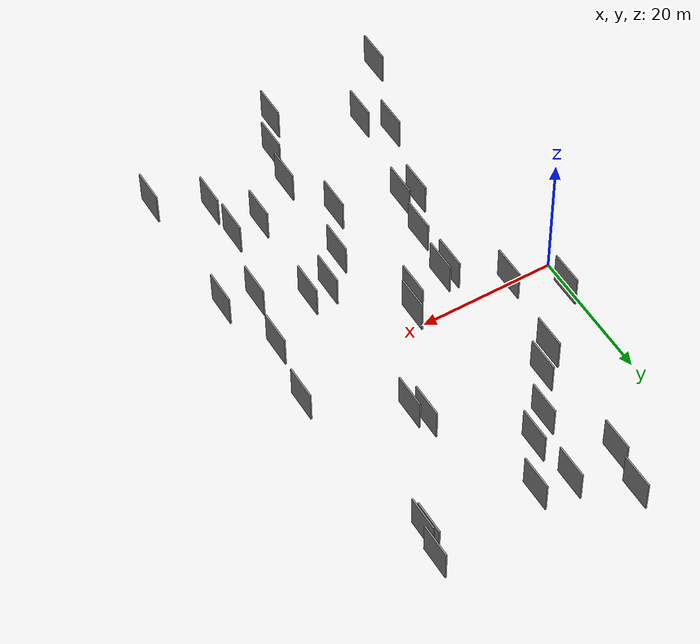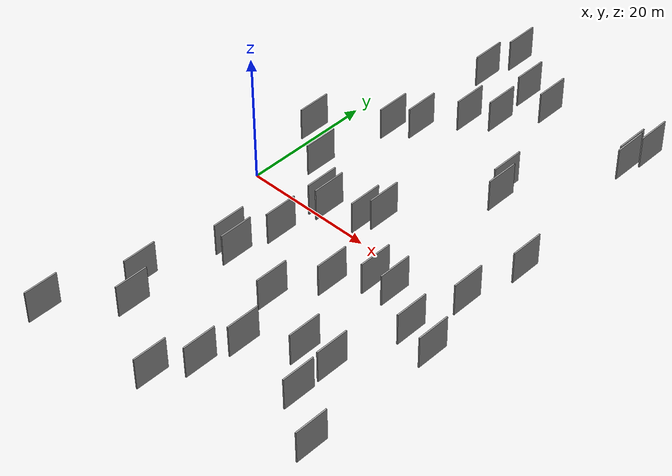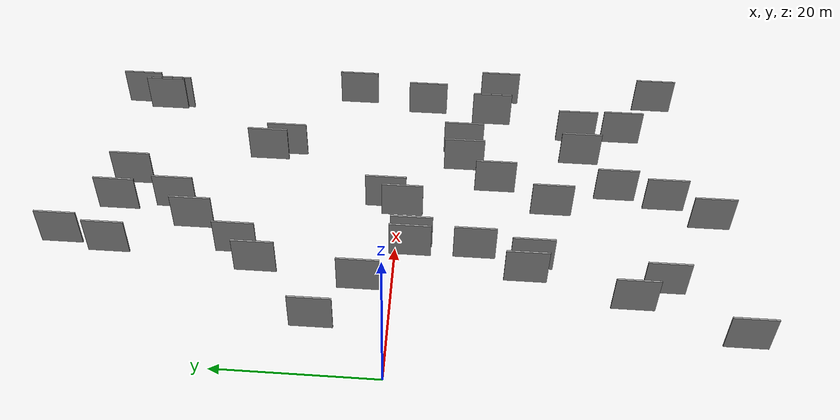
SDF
<sdf version="1.6">
 <world name="default">
  <scene>
   <sky><clouds><speed>12</speed></clouds></sky>
   <ambient>0.4 0.4 0.4 1</ambient>
   <background>0.7 0.7 0.7 1</background>
   <shadows>1</shadows>
  </scene>
  <gravity>0 0 -9.8066</gravity>
  <magnetic_field>6e-06 2.3e-05 -4.2e-05</magnetic_field>
  <physics default="0" name="default_physics" type="ode">
   <ode>
    <solver>
     <type>quick</type>
     <iters>10</iters>
     <sor>1.0</sor>
     <use_dynamic_moi_rescaling>0</use_dynamic_moi_rescaling>
    </solver>
    <constraints>
     <cfm>0</cfm>
     <erp>0.2</erp>
     <contact_max_correcting_vel>100</contact_max_correcting_vel>
     <contact_surface_layer>0.001</contact_surface_layer>
    </constraints>
   </ode>
   <max_step_size>0.004</max_step_size>
   <real_time_factor>1</real_time_factor>
   <real_time_update_rate>250</real_time_update_rate>
  </physics>
  <light name="sun" type="directional">
   <pose>0 0 10 0 0 0</pose>
   <diffuse>0.8 0.8 0.8 1</diffuse>
   <specular>0.2 0.2 0.2 1</specular>
   <attenuation>
    <range>1000</range>
    <constant>0.9</constant>
    <linear>0.01</linear>
    <quadratic>0.001</quadratic>
   </attenuation>
   <direction>-0.5 0.1 -0.9</direction>
  </light>
  <model name="grey_wall_1">
   <static>1</static>
   <pose>39.2944 32.1262 5.0 0.000000 0.000000 1.570796</pose>
   <link name="link">
    <pose>0 0 2.50 0 0 0</pose>
    <collision name="collision"><geometry><box><size>5.00 0.2 5.00</size></box></geometry></collision>
    <visual name="visual">
     <cast_shadows>0</cast_shadows>
     <geometry><box><size>5.00 0.2 5.00</size></box></geometry>
     <material>
      <script>
       <uri>model://grey_wall/materials/scripts</uri>
       <uri>model://grey_wall/materials/textures</uri>
       <name>vrc/grey_wall</name>
      </script>
     </material>
    </visual>
   </link>
  </model>
  <model name="grey_wall_2">
   <static>1</static>
   <pose>36.5267 -22.5072 5.0 0.000000 0.000000 1.570796</pose>
   <link name="link">
    <pose>0 0 2.50 0 0 0</pose>
    <collision name="collision"><geometry><box><size>5.00 0.2 5.00</size></box></geometry></collision>
    <visual name="visual">
     <cast_shadows>0</cast_shadows>
     <geometry><box><size>5.00 0.2 5.00</size></box></geometry>
     <material>
      <script>
       <uri>model://grey_wall/materials/scripts</uri>
       <uri>model://grey_wall/materials/textures</uri>
       <name>vrc/grey_wall</name>
      </script>
     </material>
    </visual>
   </link>
  </model>
  <model name="grey_wall_3">
   <static>1</static>
   <pose>30.2376 17.0134 5.0 0.000000 0.000000 1.570796</pose>
   <link name="link">
    <pose>0 0 2.50 0 0 0</pose>
    <collision name="collision"><geometry><box><size>5.00 0.2 5.00</size></box></geometry></collision>
    <visual name="visual">
     <cast_shadows>0</cast_shadows>
     <geometry><box><size>5.00 0.2 5.00</size></box></geometry>
     <material>
      <script>
       <uri>model://grey_wall/materials/scripts</uri>
       <uri>model://grey_wall/materials/textures</uri>
       <name>vrc/grey_wall</name>
      </script>
     </material>
    </visual>
   </link>
  </model>
  <model name="grey_wall_4">
   <static>1</static>
   <pose>3.1405 8.2862 5.0 0.000000 0.000000 1.570796</pose>
   <link name="link">
    <pose>0 0 2.50 0 0 0</pose>
    <collision name="collision"><geometry><box><size>5.00 0.2 5.00</size></box></geometry></collision>
    <visual name="visual">
     <cast_shadows>0</cast_shadows>
     <geometry><box><size>5.00 0.2 5.00</size></box></geometry>
     <material>
      <script>
       <uri>model://grey_wall/materials/scripts</uri>
       <uri>model://grey_wall/materials/textures</uri>
       <name>vrc/grey_wall</name>
      </script>
     </material>
    </visual>
   </link>
  </model>
  <model name="grey_wall_5">
   <static>1</static>
   <pose>43.5131 -33.0318 5.0 0.000000 0.000000 1.570796</pose>
   <link name="link">
    <pose>0 0 2.50 0 0 0</pose>
    <collision name="collision"><geometry><box><size>5.00 0.2 5.00</size></box></geometry></collision>
    <visual name="visual">
     <cast_shadows>0</cast_shadows>
     <geometry><box><size>5.00 0.2 5.00</size></box></geometry>
     <material>
      <script>
       <uri>model://grey_wall/materials/scripts</uri>
       <uri>model://grey_wall/materials/textures</uri>
       <name>vrc/grey_wall</name>
      </script>
     </material>
    </visual>
   </link>
  </model>
  <model name="grey_wall_6">
   <static>1</static>
   <pose>12.6990 33.7295 5.0 0.000000 0.000000 1.570796</pose>
   <link name="link">
    <pose>0 0 2.50 0 0 0</pose>
    <collision name="collision"><geometry><box><size>5.00 0.2 5.00</size></box></geometry></collision>
    <visual name="visual">
     <cast_shadows>0</cast_shadows>
     <geometry><box><size>5.00 0.2 5.00</size></box></geometry>
     <material>
      <script>
       <uri>model://grey_wall/materials/scripts</uri>
       <uri>model://grey_wall/materials/textures</uri>
       <name>vrc/grey_wall</name>
      </script>
     </material>
    </visual>
   </link>
  </model>
  <model name="grey_wall_7">
   <static>1</static>
   <pose>11.6338 -15.7226 5.0 0.000000 0.000000 1.570796</pose>
   <link name="link">
    <pose>0 0 2.50 0 0 0</pose>
    <collision name="collision"><geometry><box><size>5.00 0.2 5.00</size></box></geometry></collision>
    <visual name="visual">
     <cast_shadows>0</cast_shadows>
     <geometry><box><size>5.00 0.2 5.00</size></box></geometry>
     <material>
      <script>
       <uri>model://grey_wall/materials/scripts</uri>
       <uri>model://grey_wall/materials/textures</uri>
       <name>vrc/grey_wall</name>
      </script>
     </material>
    </visual>
   </link>
  </model>
  <model name="grey_wall_8">
   <static>1</static>
   <pose>32.2095 -22.7883 5.0 0.000000 0.000000 1.570796</pose>
   <link name="link">
    <pose>0 0 2.50 0 0 0</pose>
    <collision name="collision"><geometry><box><size>5.00 0.2 5.00</size></box></geometry></collision>
    <visual name="visual">
     <cast_shadows>0</cast_shadows>
     <geometry><box><size>5.00 0.2 5.00</size></box></geometry>
     <material>
      <script>
       <uri>model://grey_wall/materials/scripts</uri>
       <uri>model://grey_wall/materials/textures</uri>
       <name>vrc/grey_wall</name>
      </script>
     </material>
    </visual>
   </link>
  </model>
  <model name="grey_wall_9">
   <static>1</static>
   <pose>22.6856 1.3617 5.0 0.000000 0.000000 1.570796</pose>
   <link name="link">
    <pose>0 0 2.50 0 0 0</pose>
    <collision name="collision"><geometry><box><size>5.00 0.2 5.00</size></box></geometry></collision>
    <visual name="visual">
     <cast_shadows>0</cast_shadows>
     <geometry><box><size>5.00 0.2 5.00</size></box></geometry>
     <material>
      <script>
       <uri>model://grey_wall/materials/scripts</uri>
       <uri>model://grey_wall/materials/textures</uri>
       <name>vrc/grey_wall</name>
      </script>
     </material>
    </visual>
   </link>
  </model>
  <model name="grey_wall_10">
   <static>1</static>
   <pose>21.3297 -0.7574 5.0 0.000000 0.000000 1.570796</pose>
   <link name="link">
    <pose>0 0 2.50 0 0 0</pose>
    <collision name="collision"><geometry><box><size>5.00 0.2 5.00</size></box></geometry></collision>
    <visual name="visual">
     <cast_shadows>0</cast_shadows>
     <geometry><box><size>5.00 0.2 5.00</size></box></geometry>
     <material>
      <script>
       <uri>model://grey_wall/materials/scripts</uri>
       <uri>model://grey_wall/materials/textures</uri>
       <name>vrc/grey_wall</name>
      </script>
     </material>
    </visual>
   </link>
  </model>
  <model name="grey_wall_11">
   <static>1</static>
   <pose>11.0647 -31.6143 5.0 0.000000 0.000000 1.570796</pose>
   <link name="link">
    <pose>0 0 2.50 0 0 0</pose>
    <collision name="collision"><geometry><box><size>5.00 0.2 5.00</size></box></geometry></collision>
    <visual name="visual">
     <cast_shadows>0</cast_shadows>
     <geometry><box><size>5.00 0.2 5.00</size></box></geometry>
     <material>
      <script>
       <uri>model://grey_wall/materials/scripts</uri>
       <uri>model://grey_wall/materials/textures</uri>
       <name>vrc/grey_wall</name>
      </script>
     </material>
    </visual>
   </link>
  </model>
  <model name="grey_wall_12">
   <static>1</static>
   <pose>17.3772 24.3900 5.0 0.000000 0.000000 1.570796</pose>
   <link name="link">
    <pose>0 0 2.50 0 0 0</pose>
    <collision name="collision"><geometry><box><size>5.00 0.2 5.00</size></box></geometry></collision>
    <visual name="visual">
     <cast_shadows>0</cast_shadows>
     <geometry><box><size>5.00 0.2 5.00</size></box></geometry>
     <material>
      <script>
       <uri>model://grey_wall/materials/scripts</uri>
       <uri>model://grey_wall/materials/textures</uri>
       <name>vrc/grey_wall</name>
      </script>
     </material>
    </visual>
   </link>
  </model>
  <model name="grey_wall_13">
   <static>1</static>
   <pose>9.0673 3.5388 5.0 0.000000 0.000000 1.570796</pose>
   <link name="link">
    <pose>0 0 2.50 0 0 0</pose>
    <collision name="collision"><geometry><box><size>5.00 0.2 5.00</size></box></geometry></collision>
    <visual name="visual">
     <cast_shadows>0</cast_shadows>
     <geometry><box><size>5.00 0.2 5.00</size></box></geometry>
     <material>
      <script>
       <uri>model://grey_wall/materials/scripts</uri>
       <uri>model://grey_wall/materials/textures</uri>
       <name>vrc/grey_wall</name>
      </script>
     </material>
    </visual>
   </link>
  </model>
  <model name="grey_wall_14">
   <static>1</static>
   <pose>40.3697 35.3827 5.0 0.000000 0.000000 1.570796</pose>
   <link name="link">
    <pose>0 0 2.50 0 0 0</pose>
    <collision name="collision"><geometry><box><size>5.00 0.2 5.00</size></box></geometry></collision>
    <visual name="visual">
     <cast_shadows>0</cast_shadows>
     <geometry><box><size>5.00 0.2 5.00</size></box></geometry>
     <material>
      <script>
       <uri>model://grey_wall/materials/scripts</uri>
       <uri>model://grey_wall/materials/textures</uri>
       <name>vrc/grey_wall</name>
      </script>
     </material>
    </visual>
   </link>
  </model>
  <model name="grey_wall_15">
   <static>1</static>
   <pose>22.7039 -18.9560 5.0 0.000000 0.000000 1.570796</pose>
   <link name="link">
    <pose>0 0 2.50 0 0 0</pose>
    <collision name="collision"><geometry><box><size>5.00 0.2 5.00</size></box></geometry></collision>
    <visual name="visual">
     <cast_shadows>0</cast_shadows>
     <geometry><box><size>5.00 0.2 5.00</size></box></geometry>
     <material>
      <script>
       <uri>model://grey_wall/materials/scripts</uri>
       <uri>model://grey_wall/materials/textures</uri>
       <name>vrc/grey_wall</name>
      </script>
     </material>
    </visual>
   </link>
  </model>
  <model name="grey_wall_16">
   <static>1</static>
   <pose>10.9204 15.8211 5.0 0.000000 0.000000 1.570796</pose>
   <link name="link">
    <pose>0 0 2.50 0 0 0</pose>
    <collision name="collision"><geometry><box><size>5.00 0.2 5.00</size></box></geometry></collision>
    <visual name="visual">
     <cast_shadows>0</cast_shadows>
     <geometry><box><size>5.00 0.2 5.00</size></box></geometry>
     <material>
      <script>
       <uri>model://grey_wall/materials/scripts</uri>
       <uri>model://grey_wall/materials/textures</uri>
       <name>vrc/grey_wall</name>
      </script>
     </material>
    </visual>
   </link>
  </model>
  <model name="grey_wall_17">
   <static>1</static>
   <pose>8.3291 -27.8924 5.0 0.000000 0.000000 1.570796</pose>
   <link name="link">
    <pose>0 0 2.50 0 0 0</pose>
    <collision name="collision"><geometry><box><size>5.00 0.2 5.00</size></box></geometry></collision>
    <visual name="visual">
     <cast_shadows>0</cast_shadows>
     <geometry><box><size>5.00 0.2 5.00</size></box></geometry>
     <material>
      <script>
       <uri>model://grey_wall/materials/scripts</uri>
       <uri>model://grey_wall/materials/textures</uri>
       <name>vrc/grey_wall</name>
      </script>
     </material>
    </visual>
   </link>
  </model>
  <model name="grey_wall_18">
   <static>1</static>
   <pose>33.1860 -7.9120 5.0 0.000000 0.000000 1.570796</pose>
   <link name="link">
    <pose>0 0 2.50 0 0 0</pose>
    <collision name="collision"><geometry><box><size>5.00 0.2 5.00</size></box></geometry></collision>
    <visual name="visual">
     <cast_shadows>0</cast_shadows>
     <geometry><box><size>5.00 0.2 5.00</size></box></geometry>
     <material>
      <script>
       <uri>model://grey_wall/materials/scripts</uri>
       <uri>model://grey_wall/materials/textures</uri>
       <name>vrc/grey_wall</name>
      </script>
     </material>
    </visual>
   </link>
  </model>
  <model name="grey_wall_19">
   <static>1</static>
   <pose>13.7160 -16.4532 5.0 0.000000 0.000000 1.570796</pose>
   <link name="link">
    <pose>0 0 2.50 0 0 0</pose>
    <collision name="collision"><geometry><box><size>5.00 0.2 5.00</size></box></geometry></collision>
    <visual name="visual">
     <cast_shadows>0</cast_shadows>
     <geometry><box><size>5.00 0.2 5.00</size></box></geometry>
     <material>
      <script>
       <uri>model://grey_wall/materials/scripts</uri>
       <uri>model://grey_wall/materials/textures</uri>
       <name>vrc/grey_wall</name>
      </script>
     </material>
    </visual>
   </link>
  </model>
  <model name="grey_wall_20">
   <static>1</static>
   <pose>25.9150 -26.9164 5.0 0.000000 0.000000 1.570796</pose>
   <link name="link">
    <pose>0 0 2.50 0 0 0</pose>
    <collision name="collision"><geometry><box><size>5.00 0.2 5.00</size></box></geometry></collision>
    <visual name="visual">
     <cast_shadows>0</cast_shadows>
     <geometry><box><size>5.00 0.2 5.00</size></box></geometry>
     <material>
      <script>
       <uri>model://grey_wall/materials/scripts</uri>
       <uri>model://grey_wall/materials/textures</uri>
       <name>vrc/grey_wall</name>
      </script>
     </material>
    </visual>
   </link>
  </model>
  <model name="grey_wall_21">
   <static>1</static>
   <pose>3.8240 -39.8998 5.0 0.000000 0.000000 1.570796</pose>
   <link name="link">
    <pose>0 0 2.50 0 0 0</pose>
    <collision name="collision"><geometry><box><size>5.00 0.2 5.00</size></box></geometry></collision>
    <visual name="visual">
     <cast_shadows>0</cast_shadows>
     <geometry><box><size>5.00 0.2 5.00</size></box></geometry>
     <material>
      <script>
       <uri>model://grey_wall/materials/scripts</uri>
       <uri>model://grey_wall/materials/textures</uri>
       <name>vrc/grey_wall</name>
      </script>
     </material>
    </visual>
   </link>
  </model>
  <model name="grey_wall_22">
   <static>1</static>
   <pose>24.5226 33.4015 5.0 0.000000 0.000000 1.570796</pose>
   <link name="link">
    <pose>0 0 2.50 0 0 0</pose>
    <collision name="collision"><geometry><box><size>5.00 0.2 5.00</size></box></geometry></collision>
    <visual name="visual">
     <cast_shadows>0</cast_shadows>
     <geometry><box><size>5.00 0.2 5.00</size></box></geometry>
     <material>
      <script>
       <uri>model://grey_wall/materials/scripts</uri>
       <uri>model://grey_wall/materials/textures</uri>
       <name>vrc/grey_wall</name>
      </script>
     </material>
    </visual>
   </link>
  </model>
  <model name="grey_wall_23">
   <static>1</static>
   <pose>43.6725 -12.5322 5.0 0.000000 0.000000 1.570796</pose>
   <link name="link">
    <pose>0 0 2.50 0 0 0</pose>
    <collision name="collision"><geometry><box><size>5.00 0.2 5.00</size></box></geometry></collision>
    <visual name="visual">
     <cast_shadows>0</cast_shadows>
     <geometry><box><size>5.00 0.2 5.00</size></box></geometry>
     <material>
      <script>
       <uri>model://grey_wall/materials/scripts</uri>
       <uri>model://grey_wall/materials/textures</uri>
       <name>vrc/grey_wall</name>
      </script>
     </material>
    </visual>
   </link>
  </model>
  <model name="grey_wall_24">
   <static>1</static>
   <pose>26.3204 -12.0358 5.0 0.000000 0.000000 1.570796</pose>
   <link name="link">
    <pose>0 0 2.50 0 0 0</pose>
    <collision name="collision"><geometry><box><size>5.00 0.2 5.00</size></box></geometry></collision>
    <visual name="visual">
     <cast_shadows>0</cast_shadows>
     <geometry><box><size>5.00 0.2 5.00</size></box></geometry>
     <material>
      <script>
       <uri>model://grey_wall/materials/scripts</uri>
       <uri>model://grey_wall/materials/textures</uri>
       <name>vrc/grey_wall</name>
      </script>
     </material>
    </visual>
   </link>
  </model>
  <model name="grey_wall_25">
   <static>1</static>
   <pose>24.6346 -32.8327 5.0 0.000000 0.000000 1.570796</pose>
   <link name="link">
    <pose>0 0 2.50 0 0 0</pose>
    <collision name="collision"><geometry><box><size>5.00 0.2 5.00</size></box></geometry></collision>
    <visual name="visual">
     <cast_shadows>0</cast_shadows>
     <geometry><box><size>5.00 0.2 5.00</size></box></geometry>
     <material>
      <script>
       <uri>model://grey_wall/materials/scripts</uri>
       <uri>model://grey_wall/materials/textures</uri>
       <name>vrc/grey_wall</name>
      </script>
     </material>
    </visual>
   </link>
  </model>
  <model name="grey_wall_26">
   <static>1</static>
   <pose>14.9176 -9.7219 5.0 0.000000 0.000000 1.570796</pose>
   <link name="link">
    <pose>0 0 2.50 0 0 0</pose>
    <collision name="collision"><geometry><box><size>5.00 0.2 5.00</size></box></geometry></collision>
    <visual name="visual">
     <cast_shadows>0</cast_shadows>
     <geometry><box><size>5.00 0.2 5.00</size></box></geometry>
     <material>
      <script>
       <uri>model://grey_wall/materials/scripts</uri>
       <uri>model://grey_wall/materials/textures</uri>
       <name>vrc/grey_wall</name>
      </script>
     </material>
    </visual>
   </link>
  </model>
  <model name="grey_wall_27">
   <static>1</static>
   <pose>36.7372 -28.3265 5.0 0.000000 0.000000 1.570796</pose>
   <link name="link">
    <pose>0 0 2.50 0 0 0</pose>
    <collision name="collision"><geometry><box><size>5.00 0.2 5.00</size></box></geometry></collision>
    <visual name="visual">
     <cast_shadows>0</cast_shadows>
     <geometry><box><size>5.00 0.2 5.00</size></box></geometry>
     <material>
      <script>
       <uri>model://grey_wall/materials/scripts</uri>
       <uri>model://grey_wall/materials/textures</uri>
       <name>vrc/grey_wall</name>
      </script>
     </material>
    </visual>
   </link>
  </model>
  <model name="grey_wall_28">
   <static>1</static>
   <pose>19.8889 34.2585 5.0 0.000000 0.000000 1.570796</pose>
   <link name="link">
    <pose>0 0 2.50 0 0 0</pose>
    <collision name="collision"><geometry><box><size>5.00 0.2 5.00</size></box></geometry></collision>
    <visual name="visual">
     <cast_shadows>0</cast_shadows>
     <geometry><box><size>5.00 0.2 5.00</size></box></geometry>
     <material>
      <script>
       <uri>model://grey_wall/materials/scripts</uri>
       <uri>model://grey_wall/materials/textures</uri>
       <name>vrc/grey_wall</name>
      </script>
     </material>
    </visual>
   </link>
  </model>
  <model name="grey_wall_29">
   <static>1</static>
   <pose>13.7028 18.5525 5.0 0.000000 0.000000 1.570796</pose>
   <link name="link">
    <pose>0 0 2.50 0 0 0</pose>
    <collision name="collision"><geometry><box><size>5.00 0.2 5.00</size></box></geometry></collision>
    <visual name="visual">
     <cast_shadows>0</cast_shadows>
     <geometry><box><size>5.00 0.2 5.00</size></box></geometry>
     <material>
      <script>
       <uri>model://grey_wall/materials/scripts</uri>
       <uri>model://grey_wall/materials/textures</uri>
       <name>vrc/grey_wall</name>
      </script>
     </material>
    </visual>
   </link>
  </model>
  <model name="grey_wall_30">
   <static>1</static>
   <pose>16.1888 -2.1707 5.0 0.000000 0.000000 1.570796</pose>
   <link name="link">
    <pose>0 0 2.50 0 0 0</pose>
    <collision name="collision"><geometry><box><size>5.00 0.2 5.00</size></box></geometry></collision>
    <visual name="visual">
     <cast_shadows>0</cast_shadows>
     <geometry><box><size>5.00 0.2 5.00</size></box></geometry>
     <material>
      <script>
       <uri>model://grey_wall/materials/scripts</uri>
       <uri>model://grey_wall/materials/textures</uri>
       <name>vrc/grey_wall</name>
      </script>
     </material>
    </visual>
   </link>
  </model>
  <model name="grey_wall_31">
   <static>1</static>
   <pose>31.3138 14.6958 5.0 0.000000 0.000000 1.570796</pose>
   <link name="link">
    <pose>0 0 2.50 0 0 0</pose>
    <collision name="collision"><geometry><box><size>5.00 0.2 5.00</size></box></geometry></collision>
    <visual name="visual">
     <cast_shadows>0</cast_shadows>
     <geometry><box><size>5.00 0.2 5.00</size></box></geometry>
     <material>
      <script>
       <uri>model://grey_wall/materials/scripts</uri>
       <uri>model://grey_wall/materials/textures</uri>
       <name>vrc/grey_wall</name>
      </script>
     </material>
    </visual>
   </link>
  </model>
  <model name="grey_wall_32">
   <static>1</static>
   <pose>21.8037 -38.1211 5.0 0.000000 0.000000 1.570796</pose>
   <link name="link">
    <pose>0 0 2.50 0 0 0</pose>
    <collision name="collision"><geometry><box><size>5.00 0.2 5.00</size></box></geometry></collision>
    <visual name="visual">
     <cast_shadows>0</cast_shadows>
     <geometry><box><size>5.00 0.2 5.00</size></box></geometry>
     <material>
      <script>
       <uri>model://grey_wall/materials/scripts</uri>
       <uri>model://grey_wall/materials/textures</uri>
       <name>vrc/grey_wall</name>
      </script>
     </material>
    </visual>
   </link>
  </model>
  <model name="grey_wall_33">
   <static>1</static>
   <pose>20.6625 27.2279 5.0 0.000000 0.000000 1.570796</pose>
   <link name="link">
    <pose>0 0 2.50 0 0 0</pose>
    <collision name="collision"><geometry><box><size>5.00 0.2 5.00</size></box></geometry></collision>
    <visual name="visual">
     <cast_shadows>0</cast_shadows>
     <geometry><box><size>5.00 0.2 5.00</size></box></geometry>
     <material>
      <script>
       <uri>model://grey_wall/materials/scripts</uri>
       <uri>model://grey_wall/materials/textures</uri>
       <name>vrc/grey_wall</name>
      </script>
     </material>
    </visual>
   </link>
  </model>
  <model name="grey_wall_34">
   <static>1</static>
   <pose>42.4021 6.3969 5.0 0.000000 0.000000 1.570796</pose>
   <link name="link">
    <pose>0 0 2.50 0 0 0</pose>
    <collision name="collision"><geometry><box><size>5.00 0.2 5.00</size></box></geometry></collision>
    <visual name="visual">
     <cast_shadows>0</cast_shadows>
     <geometry><box><size>5.00 0.2 5.00</size></box></geometry>
     <material>
      <script>
       <uri>model://grey_wall/materials/scripts</uri>
       <uri>model://grey_wall/materials/textures</uri>
       <name>vrc/grey_wall</name>
      </script>
     </material>
    </visual>
   </link>
  </model>
  <model name="grey_wall_35">
   <static>1</static>
   <pose>39.1909 -11.4660 5.0 0.000000 0.000000 1.570796</pose>
   <link name="link">
    <pose>0 0 2.50 0 0 0</pose>
    <collision name="collision"><geometry><box><size>5.00 0.2 5.00</size></box></geometry></collision>
    <visual name="visual">
     <cast_shadows>0</cast_shadows>
     <geometry><box><size>5.00 0.2 5.00</size></box></geometry>
     <material>
      <script>
       <uri>model://grey_wall/materials/scripts</uri>
       <uri>model://grey_wall/materials/textures</uri>
       <name>vrc/grey_wall</name>
      </script>
     </material>
    </visual>
   </link>
  </model>
  <model name="grey_wall_36">
   <static>1</static>
   <pose>39.6124 31.2853 5.0 0.000000 0.000000 1.570796</pose>
   <link name="link">
    <pose>0 0 2.50 0 0 0</pose>
    <collision name="collision"><geometry><box><size>5.00 0.2 5.00</size></box></geometry></collision>
    <visual name="visual">
     <cast_shadows>0</cast_shadows>
     <geometry><box><size>5.00 0.2 5.00</size></box></geometry>
     <material>
      <script>
       <uri>model://grey_wall/materials/scripts</uri>
       <uri>model://grey_wall/materials/textures</uri>
       <name>vrc/grey_wall</name>
      </script>
     </material>
    </visual>
   </link>
  </model>
  <model name="grey_wall_37">
   <static>1</static>
   <pose>30.0123 -8.0659 5.0 0.000000 0.000000 1.570796</pose>
   <link name="link">
    <pose>0 0 2.50 0 0 0</pose>
    <collision name="collision"><geometry><box><size>5.00 0.2 5.00</size></box></geometry></collision>
    <visual name="visual">
     <cast_shadows>0</cast_shadows>
     <geometry><box><size>5.00 0.2 5.00</size></box></geometry>
     <material>
      <script>
       <uri>model://grey_wall/materials/scripts</uri>
       <uri>model://grey_wall/materials/textures</uri>
       <name>vrc/grey_wall</name>
      </script>
     </material>
    </visual>
   </link>
  </model>
  <model name="grey_wall_38">
   <static>1</static>
   <pose>13.7922 39.7031 5.0 0.000000 0.000000 1.570796</pose>
   <link name="link">
    <pose>0 0 2.50 0 0 0</pose>
    <collision name="collision"><geometry><box><size>5.00 0.2 5.00</size></box></geometry></collision>
    <visual name="visual">
     <cast_shadows>0</cast_shadows>
     <geometry><box><size>5.00 0.2 5.00</size></box></geometry>
     <material>
      <script>
       <uri>model://grey_wall/materials/scripts</uri>
       <uri>model://grey_wall/materials/textures</uri>
       <name>vrc/grey_wall</name>
      </script>
     </material>
    </visual>
   </link>
  </model>
  <model name="grey_wall_39">
   <static>1</static>
   <pose>40.8313 -2.9437 5.0 0.000000 0.000000 1.570796</pose>
   <link name="link">
    <pose>0 0 2.50 0 0 0</pose>
    <collision name="collision"><geometry><box><size>5.00 0.2 5.00</size></box></geometry></collision>
    <visual name="visual">
     <cast_shadows>0</cast_shadows>
     <geometry><box><size>5.00 0.2 5.00</size></box></geometry>
     <material>
      <script>
       <uri>model://grey_wall/materials/scripts</uri>
       <uri>model://grey_wall/materials/textures</uri>
       <name>vrc/grey_wall</name>
      </script>
     </material>
    </visual>
   </link>
  </model>
  <model name="grey_wall_40">
   <static>1</static>
   <pose>14.8039 -2.0771 5.0 0.000000 0.000000 1.570796</pose>
   <link name="link">
    <pose>0 0 2.50 0 0 0</pose>
    <collision name="collision"><geometry><box><size>5.00 0.2 5.00</size></box></geometry></collision>
    <visual name="visual">
     <cast_shadows>0</cast_shadows>
     <geometry><box><size>5.00 0.2 5.00</size></box></geometry>
     <material>
      <script>
       <uri>model://grey_wall/materials/scripts</uri>
       <uri>model://grey_wall/materials/textures</uri>
       <name>vrc/grey_wall</name>
      </script>
     </material>
    </visual>
   </link>
  </model>
 </world>
</sdf>
